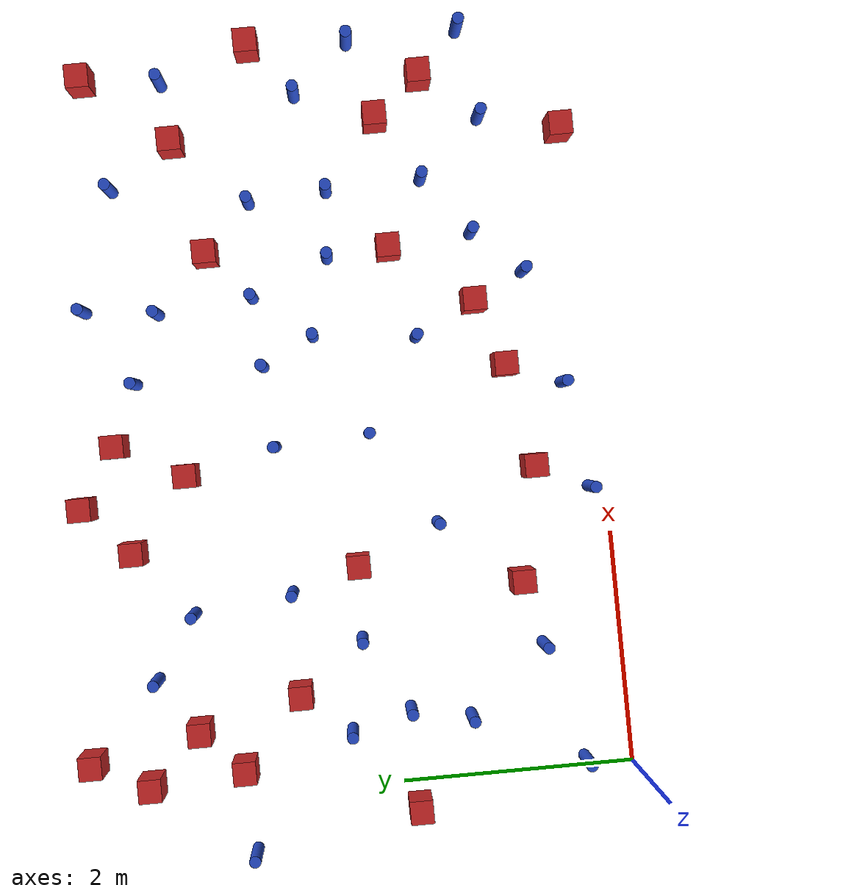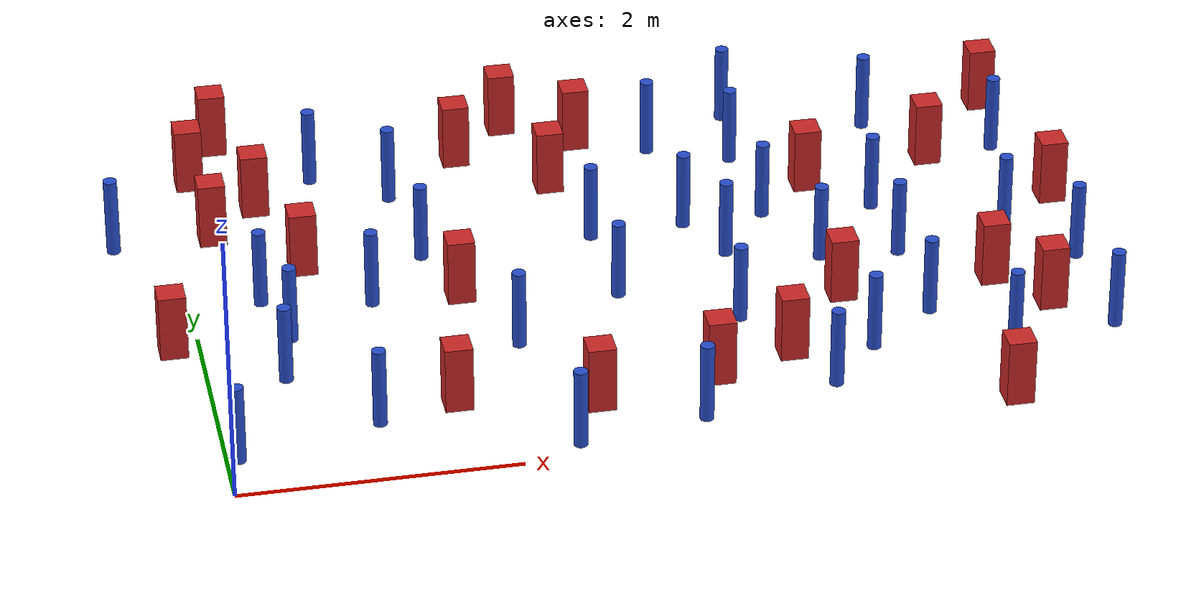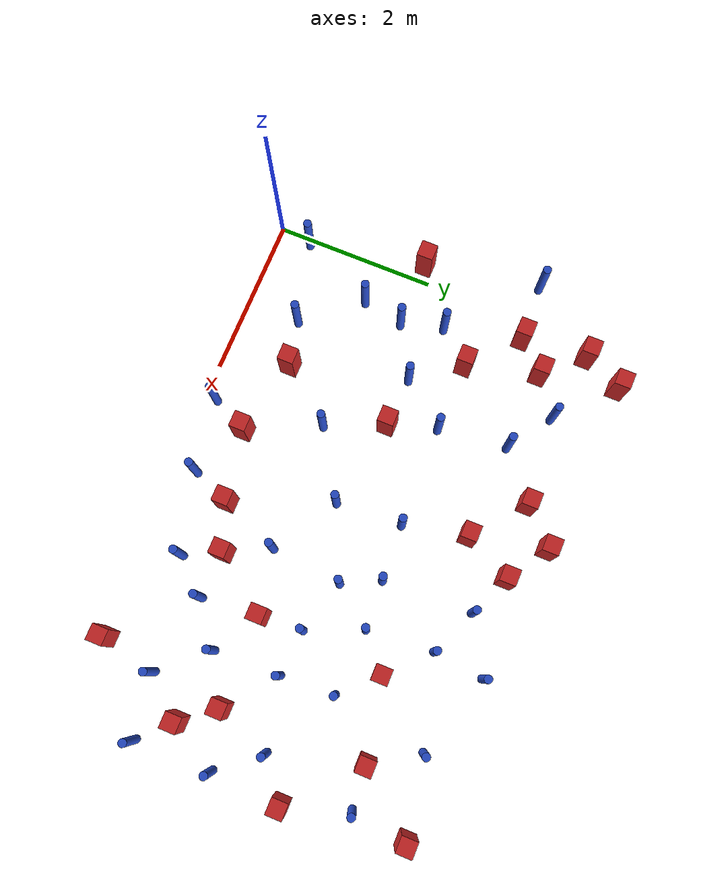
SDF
<sdf version="1.6">
 <model name="dense_87">
  <model name="pole_obstacle4">
   <static>true</static>
   <pose>4.31455545916 2.92079606758 -3.09024884793e-07 -7.19054271912e-07 -2.11315075144e-07 -1.93935509269e-07</pose>
   <link name="link">
    <pose>0 0 0.3 0 -0 0</pose>
    <inertial>
     <mass>1</mass>
     <inertia><ixx>0.145833</ixx><ixy>0</ixy><ixz>0</ixz><iyy>0.145833</iyy><iyz>0</iyz><izz>0.125</izz></inertia>
    </inertial>
    <collision name="collision">
     <geometry><cylinder><radius>0.05</radius><length>.6</length></cylinder></geometry>
    </collision>
    <visual name="visual">
     <geometry><cylinder><radius>0.05</radius><length>.6</length></cylinder></geometry>
     <material>
      <script><name>Gazebo/Blue</name><uri>file://media/materials/scripts/gazebo.material</uri></script>
     </material>
    </visual>
   </link>
  </model>
  <model name="pole_obstacle25">
   <static>true</static>
   <pose>1.74162384043 2.80790043297 -3.09024884793e-07 -7.19054271912e-07 -2.11315075132e-07 -1.93935509263e-07</pose>
   <link name="link">
    <pose>0 0 0.3 0 -0 0</pose>
    <inertial>
     <mass>1</mass>
     <inertia><ixx>0.145833</ixx><ixy>0</ixy><ixz>0</ixz><iyy>0.145833</iyy><iyz>0</iyz><izz>0.125</izz></inertia>
    </inertial>
    <collision name="collision">
     <geometry><cylinder><radius>0.05</radius><length>.6</length></cylinder></geometry>
    </collision>
    <visual name="visual">
     <geometry><cylinder><radius>0.05</radius><length>.6</length></cylinder></geometry>
     <material>
      <script><name>Gazebo/Blue</name><uri>file://media/materials/scripts/gazebo.material</uri></script>
     </material>
    </visual>
   </link>
  </model>
  <model name="pole_obstacle26">
   <static>true</static>
   <pose>1.09740934956 4.03963269576 -3.09024884793e-07 -7.19054271912e-07 -2.11315075135e-07 -1.93935509266e-07</pose>
   <link name="link">
    <pose>0 0 0.3 0 -0 0</pose>
    <inertial>
     <mass>1</mass>
     <inertia><ixx>0.145833</ixx><ixy>0</ixy><ixz>0</ixz><iyy>0.145833</iyy><iyz>0</iyz><izz>0.125</izz></inertia>
    </inertial>
    <collision name="collision">
     <geometry><cylinder><radius>0.05</radius><length>.6</length></cylinder></geometry>
    </collision>
    <visual name="visual">
     <geometry><cylinder><radius>0.05</radius><length>.6</length></cylinder></geometry>
     <material>
      <script><name>Gazebo/Blue</name><uri>file://media/materials/scripts/gazebo.material</uri></script>
     </material>
    </visual>
   </link>
  </model>
  <model name="pole_obstacle30">
   <static>true</static>
   <pose>5.6883734947 0.833998870082 -3.09024884793e-07 -7.19054271912e-07 -2.11315075134e-07 -1.93935509265e-07</pose>
   <link name="link">
    <pose>0 0 0.3 0 -0 0</pose>
    <inertial>
     <mass>1</mass>
     <inertia><ixx>0.145833</ixx><ixy>0</ixy><ixz>0</ixz><iyy>0.145833</iyy><iyz>0</iyz><izz>0.125</izz></inertia>
    </inertial>
    <collision name="collision">
     <geometry><cylinder><radius>0.05</radius><length>.6</length></cylinder></geometry>
    </collision>
    <visual name="visual">
     <geometry><cylinder><radius>0.05</radius><length>.6</length></cylinder></geometry>
     <material>
      <script><name>Gazebo/Blue</name><uri>file://media/materials/scripts/gazebo.material</uri></script>
     </material>
    </visual>
   </link>
  </model>
  <model name="pole_obstacle31">
   <static>true</static>
   <pose>6.4628553626 0.952704947957 -3.09024884793e-07 -7.19054271912e-07 -2.11315075121e-07 -1.93935509258e-07</pose>
   <link name="link">
    <pose>0 0 0.3 0 -0 0</pose>
    <inertial>
     <mass>1</mass>
     <inertia><ixx>0.145833</ixx><ixy>0</ixy><ixz>0</ixz><iyy>0.145833</iyy><iyz>0</iyz><izz>0.125</izz></inertia>
    </inertial>
    <collision name="collision">
     <geometry><cylinder><radius>0.05</radius><length>.6</length></cylinder></geometry>
    </collision>
    <visual name="visual">
     <geometry><cylinder><radius>0.05</radius><length>.6</length></cylinder></geometry>
     <material>
      <script><name>Gazebo/Blue</name><uri>file://media/materials/scripts/gazebo.material</uri></script>
     </material>
    </visual>
   </link>
  </model>
  <model name="square_post_obstacle24">
   <static>true</static>
   <pose>5.75669852665 1.72912787359 -4.36207812815e-07 3.75137919937e-06 9.77721102514e-07 2.47381364184e-05</pose>
   <link name="link">
    <pose>0 0 0.25 0 -0 0</pose>
    <inertial>
     <mass>100</mass>
     <inertia>
      <ixx>0.166667</ixx>
      <ixy>0</ixy>
      <ixz>0</ixz>
      <iyy>0.166667</iyy>
      <iyz>0</iyz>
      <izz>0.166667</izz>
     </inertia>
    </inertial>
    <collision name="collision"><geometry><box><size>.2 .2 .5</size></box></geometry></collision>
    <visual name="visual">
     <geometry><box><size>.2 .2 .5</size></box></geometry>
     <material>
      <script><name>Gazebo/Red</name><uri>file://media/materials/scripts/gazebo.material</uri></script>
     </material>
    </visual>
   </link>
  </model>
  <model name="pole_obstacle38">
   <static>true</static>
   <pose>3.3402823136 0.316482043341 -3.09024884793e-07 -7.19054271912e-07 -2.1131507512e-07 -1.93935509259e-07</pose>
   <link name="link">
    <pose>0 0 0.3 0 -0 0</pose>
    <inertial>
     <mass>1</mass>
     <inertia><ixx>0.145833</ixx><ixy>0</ixy><ixz>0</ixz><iyy>0.145833</iyy><iyz>0</iyz><izz>0.125</izz></inertia>
    </inertial>
    <collision name="collision">
     <geometry><cylinder><radius>0.05</radius><length>.6</length></cylinder></geometry>
    </collision>
    <visual name="visual">
     <geometry><cylinder><radius>0.05</radius><length>.6</length></cylinder></geometry>
     <material>
      <script><name>Gazebo/Blue</name><uri>file://media/materials/scripts/gazebo.material</uri></script>
     </material>
    </visual>
   </link>
  </model>
  <model name="pole_obstacle39">
   <static>true</static>
   <pose>4.69946434895 0.99012826212 -3.09024884793e-07 -7.19054271912e-07 -2.11315075121e-07 -1.93935509258e-07</pose>
   <link name="link">
    <pose>0 0 0.3 0 -0 0</pose>
    <inertial>
     <mass>1</mass>
     <inertia><ixx>0.145833</ixx><ixy>0</ixy><ixz>0</ixz><iyy>0.145833</iyy><iyz>0</iyz><izz>0.125</izz></inertia>
    </inertial>
    <collision name="collision">
     <geometry><cylinder><radius>0.05</radius><length>.6</length></cylinder></geometry>
    </collision>
    <visual name="visual">
     <geometry><cylinder><radius>0.05</radius><length>.6</length></cylinder></geometry>
     <material>
      <script><name>Gazebo/Blue</name><uri>file://media/materials/scripts/gazebo.material</uri></script>
     </material>
    </visual>
   </link>
  </model>
  <model name="square_post_obstacle31">
   <static>true</static>
   <pose>0.866396240107 2.81461666955 -4.36207812815e-07 3.75137919937e-06 9.77721102514e-07 2.47381364184e-05</pose>
   <link name="link">
    <pose>0 0 0.25 0 -0 0</pose>
    <inertial>
     <mass>100</mass>
     <inertia>
      <ixx>0.166667</ixx>
      <ixy>0</ixy>
      <ixz>0</ixz>
      <iyy>0.166667</iyy>
      <iyz>0</iyz>
      <izz>0.166667</izz>
     </inertia>
    </inertial>
    <collision name="collision"><geometry><box><size>.2 .2 .5</size></box></geometry></collision>
    <visual name="visual">
     <geometry><box><size>.2 .2 .5</size></box></geometry>
     <material>
      <script><name>Gazebo/Red</name><uri>file://media/materials/scripts/gazebo.material</uri></script>
     </material>
    </visual>
   </link>
  </model>
  <model name="square_post_obstacle34">
   <static>true</static>
   <pose>3.13941664115 4.21430315404 -4.36207812815e-07 3.75137919937e-06 9.77721102514e-07 2.47381364184e-05</pose>
   <link name="link">
    <pose>0 0 0.25 0 -0 0</pose>
    <inertial>
     <mass>100</mass>
     <inertia>
      <ixx>0.166667</ixx>
      <ixy>0</ixy>
      <ixz>0</ixz>
      <iyy>0.166667</iyy>
      <iyz>0</iyz>
      <izz>0.166667</izz>
     </inertia>
    </inertial>
    <collision name="collision"><geometry><box><size>.2 .2 .5</size></box></geometry></collision>
    <visual name="visual">
     <geometry><box><size>.2 .2 .5</size></box></geometry>
     <material>
      <script><name>Gazebo/Red</name><uri>file://media/materials/scripts/gazebo.material</uri></script>
     </material>
    </visual>
   </link>
  </model>
  <model name="pole_obstacle46">
   <static>true</static>
   <pose>2.23304178201 1.50109195398 -3.09024884793e-07 -7.19054271912e-07 -2.11315075122e-07 -1.93935509259e-07</pose>
   <link name="link">
    <pose>0 0 0.3 0 -0 0</pose>
    <inertial>
     <mass>1</mass>
     <inertia><ixx>0.145833</ixx><ixy>0</ixy><ixz>0</ixz><iyy>0.145833</iyy><iyz>0</iyz><izz>0.125</izz></inertia>
    </inertial>
    <collision name="collision">
     <geometry><cylinder><radius>0.05</radius><length>.6</length></cylinder></geometry>
    </collision>
    <visual name="visual">
     <geometry><cylinder><radius>0.05</radius><length>.6</length></cylinder></geometry>
     <material>
      <script><name>Gazebo/Blue</name><uri>file://media/materials/scripts/gazebo.material</uri></script>
     </material>
    </visual>
   </link>
  </model>
  <model name="pole_obstacle48">
   <static>true</static>
   <pose>4.32806337356 0.573420995363 -3.09024884793e-07 -7.19054271912e-07 -2.11315075134e-07 -1.93935509265e-07</pose>
   <link name="link">
    <pose>0 0 0.3 0 -0 0</pose>
    <inertial>
     <mass>1</mass>
     <inertia><ixx>0.145833</ixx><ixy>0</ixy><ixz>0</ixz><iyy>0.145833</iyy><iyz>0</iyz><izz>0.125</izz></inertia>
    </inertial>
    <collision name="collision">
     <geometry><cylinder><radius>0.05</radius><length>.6</length></cylinder></geometry>
    </collision>
    <visual name="visual">
     <geometry><cylinder><radius>0.05</radius><length>.6</length></cylinder></geometry>
     <material>
      <script><name>Gazebo/Blue</name><uri>file://media/materials/scripts/gazebo.material</uri></script>
     </material>
    </visual>
   </link>
  </model>
  <model name="pole_obstacle49">
   <static>true</static>
   <pose>0.543889795079 1.36433633656 -3.09024884793e-07 -7.19054271912e-07 -2.11315075142e-07 -1.93935509268e-07</pose>
   <link name="link">
    <pose>0 0 0.3 0 -0 0</pose>
    <inertial>
     <mass>1</mass>
     <inertia><ixx>0.145833</ixx><ixy>0</ixy><ixz>0</ixz><iyy>0.145833</iyy><iyz>0</iyz><izz>0.125</izz></inertia>
    </inertial>
    <collision name="collision">
     <geometry><cylinder><radius>0.05</radius><length>.6</length></cylinder></geometry>
    </collision>
    <visual name="visual">
     <geometry><cylinder><radius>0.05</radius><length>.6</length></cylinder></geometry>
     <material>
      <script><name>Gazebo/Blue</name><uri>file://media/materials/scripts/gazebo.material</uri></script>
     </material>
    </visual>
   </link>
  </model>
  <model name="square_post_obstacle43">
   <static>true</static>
   <pose>4.10786800772 1.02498283134 -4.36207812815e-07 3.75137919937e-06 9.77721102514e-07 2.47381364184e-05</pose>
   <link name="link">
    <pose>0 0 0.25 0 -0 0</pose>
    <inertial>
     <mass>100</mass>
     <inertia>
      <ixx>0.166667</ixx>
      <ixy>0</ixy>
      <ixz>0</ixz>
      <iyy>0.166667</iyy>
      <iyz>0</iyz>
      <izz>0.166667</izz>
     </inertia>
    </inertial>
    <collision name="collision"><geometry><box><size>.2 .2 .5</size></box></geometry></collision>
    <visual name="visual">
     <geometry><box><size>.2 .2 .5</size></box></geometry>
     <material>
      <script><name>Gazebo/Red</name><uri>file://media/materials/scripts/gazebo.material</uri></script>
     </material>
    </visual>
   </link>
  </model>
  <model name="pole_obstacle58">
   <static>true</static>
   <pose>0.651572628444 1.88113715899 -3.09024884793e-07 -7.19054271912e-07 -2.11315075135e-07 -1.93935509266e-07</pose>
   <link name="link">
    <pose>0 0 0.3 0 -0 0</pose>
    <inertial>
     <mass>1</mass>
     <inertia><ixx>0.145833</ixx><ixy>0</ixy><ixz>0</ixz><iyy>0.145833</iyy><iyz>0</iyz><izz>0.125</izz></inertia>
    </inertial>
    <collision name="collision">
     <geometry><cylinder><radius>0.05</radius><length>.6</length></cylinder></geometry>
    </collision>
    <visual name="visual">
     <geometry><cylinder><radius>0.05</radius><length>.6</length></cylinder></geometry>
     <material>
      <script><name>Gazebo/Blue</name><uri>file://media/materials/scripts/gazebo.material</uri></script>
     </material>
    </visual>
   </link>
  </model>
  <model name="pole_obstacle67">
   <static>true</static>
   <pose>0.0842549476155 0.416633764577 -3.09024884793e-07 -7.19054271912e-07 -2.11315075134e-07 -1.93935509264e-07</pose>
   <link name="link">
    <pose>0 0 0.3 0 -0 0</pose>
    <inertial>
     <mass>1</mass>
     <inertia><ixx>0.145833</ixx><ixy>0</ixy><ixz>0</ixz><iyy>0.145833</iyy><iyz>0</iyz><izz>0.125</izz></inertia>
    </inertial>
    <collision name="collision">
     <geometry><cylinder><radius>0.05</radius><length>.6</length></cylinder></geometry>
    </collision>
    <visual name="visual">
     <geometry><cylinder><radius>0.05</radius><length>.6</length></cylinder></geometry>
     <material>
      <script><name>Gazebo/Blue</name><uri>file://media/materials/scripts/gazebo.material</uri></script>
     </material>
    </visual>
   </link>
  </model>
  <model name="pole_obstacle68">
   <static>true</static>
   <pose>1.29208701074 2.24475795163 -3.09024884793e-07 -7.19054271912e-07 -2.11315075132e-07 -1.93935509263e-07</pose>
   <link name="link">
    <pose>0 0 0.3 0 -0 0</pose>
    <inertial>
     <mass>1</mass>
     <inertia><ixx>0.145833</ixx><ixy>0</ixy><ixz>0</ixz><iyy>0.145833</iyy><iyz>0</iyz><izz>0.125</izz></inertia>
    </inertial>
    <collision name="collision">
     <geometry><cylinder><radius>0.05</radius><length>.6</length></cylinder></geometry>
    </collision>
    <visual name="visual">
     <geometry><cylinder><radius>0.05</radius><length>.6</length></cylinder></geometry>
     <material>
      <script><name>Gazebo/Blue</name><uri>file://media/materials/scripts/gazebo.material</uri></script>
     </material>
    </visual>
   </link>
  </model>
  <model name="pole_obstacle73">
   <static>true</static>
   <pose>4.32288337281 4.38044148047 -3.09024884793e-07 -7.19054271911e-07 -2.1131507516e-07 -1.93935509277e-07</pose>
   <link name="link">
    <pose>0 0 0.3 0 -0 0</pose>
    <inertial>
     <mass>1</mass>
     <inertia><ixx>0.145833</ixx><ixy>0</ixy><ixz>0</ixz><iyy>0.145833</iyy><iyz>0</iyz><izz>0.125</izz></inertia>
    </inertial>
    <collision name="collision">
     <geometry><cylinder><radius>0.05</radius><length>.6</length></cylinder></geometry>
    </collision>
    <visual name="visual">
     <geometry><cylinder><radius>0.05</radius><length>.6</length></cylinder></geometry>
     <material>
      <script><name>Gazebo/Blue</name><uri>file://media/materials/scripts/gazebo.material</uri></script>
     </material>
    </visual>
   </link>
  </model>
  <model name="pole_obstacle83">
   <static>true</static>
   <pose>1.10468324843 0.68616891235 -3.09024884793e-07 -7.19054271912e-07 -2.1131507513e-07 -1.93935509263e-07</pose>
   <link name="link">
    <pose>0 0 0.3 0 -0 0</pose>
    <inertial>
     <mass>1</mass>
     <inertia><ixx>0.145833</ixx><ixy>0</ixy><ixz>0</ixz><iyy>0.145833</iyy><iyz>0</iyz><izz>0.125</izz></inertia>
    </inertial>
    <collision name="collision">
     <geometry><cylinder><radius>0.05</radius><length>.6</length></cylinder></geometry>
    </collision>
    <visual name="visual">
     <geometry><cylinder><radius>0.05</radius><length>.6</length></cylinder></geometry>
     <material>
      <script><name>Gazebo/Blue</name><uri>file://media/materials/scripts/gazebo.material</uri></script>
     </material>
    </visual>
   </link>
  </model>
  <model name="square_post_obstacle73">
   <static>true</static>
   <pose>3.53665921316 0.809654271175 -4.36207812815e-07 3.75137919937e-06 9.77721102514e-07 2.47381364184e-05</pose>
   <link name="link">
    <pose>0 0 0.25 0 -0 0</pose>
    <inertial>
     <mass>100</mass>
     <inertia>
      <ixx>0.166667</ixx>
      <ixy>0</ixy>
      <ixz>0</ixz>
      <iyy>0.166667</iyy>
      <iyz>0</iyz>
      <izz>0.166667</izz>
     </inertia>
    </inertial>
    <collision name="collision"><geometry><box><size>.2 .2 .5</size></box></geometry></collision>
    <visual name="visual">
     <geometry><box><size>.2 .2 .5</size></box></geometry>
     <material>
      <script><name>Gazebo/Red</name><uri>file://media/materials/scripts/gazebo.material</uri></script>
     </material>
    </visual>
   </link>
  </model>
  <model name="square_post_obstacle74">
   <static>true</static>
   <pose>6.08530940527 1.32384995775 -4.36207812815e-07 3.75137919937e-06 9.77721102514e-07 2.47381364184e-05</pose>
   <link name="link">
    <pose>0 0 0.25 0 -0 0</pose>
    <inertial>
     <mass>100</mass>
     <inertia>
      <ixx>0.166667</ixx>
      <ixy>0</ixy>
      <ixz>0</ixz>
      <iyy>0.166667</iyy>
      <iyz>0</iyz>
      <izz>0.166667</izz>
     </inertia>
    </inertial>
    <collision name="collision"><geometry><box><size>.2 .2 .5</size></box></geometry></collision>
    <visual name="visual">
     <geometry><box><size>.2 .2 .5</size></box></geometry>
     <material>
      <script><name>Gazebo/Red</name><uri>file://media/materials/scripts/gazebo.material</uri></script>
     </material>
    </visual>
   </link>
  </model>
  <model name="pole_obstacle88">
   <static>true</static>
   <pose>-0.455179903038 3.32063741083 -3.09024884793e-07 -7.19054271912e-07 -2.11315075121e-07 -1.93935509258e-07</pose>
   <link name="link">
    <pose>0 0 0.3 0 -0 0</pose>
    <inertial>
     <mass>1</mass>
     <inertia><ixx>0.145833</ixx><ixy>0</ixy><ixz>0</ixz><iyy>0.145833</iyy><iyz>0</iyz><izz>0.125</izz></inertia>
    </inertial>
    <collision name="collision">
     <geometry><cylinder><radius>0.05</radius><length>.6</length></cylinder></geometry>
    </collision>
    <visual name="visual">
     <geometry><cylinder><radius>0.05</radius><length>.6</length></cylinder></geometry>
     <material>
      <script><name>Gazebo/Blue</name><uri>file://media/materials/scripts/gazebo.material</uri></script>
     </material>
    </visual>
   </link>
  </model>
  <model name="pole_obstacle89">
   <static>true</static>
   <pose>5.17434374706 2.20109666502 -3.09024884793e-07 -7.19054271912e-07 -2.11315075144e-07 -1.93935509269e-07</pose>
   <link name="link">
    <pose>0 0 0.3 0 -0 0</pose>
    <inertial>
     <mass>1</mass>
     <inertia><ixx>0.145833</ixx><ixy>0</ixy><ixz>0</ixz><iyy>0.145833</iyy><iyz>0</iyz><izz>0.125</izz></inertia>
    </inertial>
    <collision name="collision">
     <geometry><cylinder><radius>0.05</radius><length>.6</length></cylinder></geometry>
    </collision>
    <visual name="visual">
     <geometry><cylinder><radius>0.05</radius><length>.6</length></cylinder></geometry>
     <material>
      <script><name>Gazebo/Blue</name><uri>file://media/materials/scripts/gazebo.material</uri></script>
     </material>
    </visual>
   </link>
  </model>
  <model name="square_post_obstacle82">
   <static>true</static>
   <pose>2.64726107092 0.635739808452 -4.36207812815e-07 3.75137919937e-06 9.77721102514e-07 2.47381364184e-05</pose>
   <link name="link">
    <pose>0 0 0.25 0 -0 0</pose>
    <inertial>
     <mass>100</mass>
     <inertia>
      <ixx>0.166667</ixx>
      <ixy>0</ixy>
      <ixz>0</ixz>
      <iyy>0.166667</iyy>
      <iyz>0</iyz>
      <izz>0.166667</izz>
     </inertia>
    </inertial>
    <collision name="collision"><geometry><box><size>.2 .2 .5</size></box></geometry></collision>
    <visual name="visual">
     <geometry><box><size>.2 .2 .5</size></box></geometry>
     <material>
      <script><name>Gazebo/Red</name><uri>file://media/materials/scripts/gazebo.material</uri></script>
     </material>
    </visual>
   </link>
  </model>
  <model name="pole_obstacle93">
   <static>true</static>
   <pose>4.60090280616 2.24381102893 -3.09024884793e-07 -7.19054271912e-07 -2.11315075144e-07 -1.93935509269e-07</pose>
   <link name="link">
    <pose>0 0 0.3 0 -0 0</pose>
    <inertial>
     <mass>1</mass>
     <inertia><ixx>0.145833</ixx><ixy>0</ixy><ixz>0</ixz><iyy>0.145833</iyy><iyz>0</iyz><izz>0.125</izz></inertia>
    </inertial>
    <collision name="collision">
     <geometry><cylinder><radius>0.05</radius><length>.6</length></cylinder></geometry>
    </collision>
    <visual name="visual">
     <geometry><cylinder><radius>0.05</radius><length>.6</length></cylinder></geometry>
     <material>
      <script><name>Gazebo/Blue</name><uri>file://media/materials/scripts/gazebo.material</uri></script>
     </material>
    </visual>
   </link>
  </model>
  <model name="square_post_obstacle86">
   <static>true</static>
   <pose>1.92738016484 2.22029041243 -4.36207812815e-07 3.75137919937e-06 9.77721102514e-07 2.47381364184e-05</pose>
   <link name="link">
    <pose>0 0 0.25 0 -0 0</pose>
    <inertial>
     <mass>100</mass>
     <inertia>
      <ixx>0.166667</ixx>
      <ixy>0</ixy>
      <ixz>0</ixz>
      <iyy>0.166667</iyy>
      <iyz>0</iyz>
      <izz>0.166667</izz>
     </inertia>
    </inertial>
    <collision name="collision"><geometry><box><size>.2 .2 .5</size></box></geometry></collision>
    <visual name="visual">
     <geometry><box><size>.2 .2 .5</size></box></geometry>
     <material>
      <script><name>Gazebo/Red</name><uri>file://media/materials/scripts/gazebo.material</uri></script>
     </material>
    </visual>
   </link>
  </model>
  <model name="pole_obstacle106">
   <static>true</static>
   <pose>5.13529515188 2.87699589242 -3.09024884793e-07 -7.19054271912e-07 -2.11315075144e-07 -1.93935509269e-07</pose>
   <link name="link">
    <pose>0 0 0.3 0 -0 0</pose>
    <inertial>
     <mass>1</mass>
     <inertia><ixx>0.145833</ixx><ixy>0</ixy><ixz>0</ixz><iyy>0.145833</iyy><iyz>0</iyz><izz>0.125</izz></inertia>
    </inertial>
    <collision name="collision">
     <geometry><cylinder><radius>0.05</radius><length>.6</length></cylinder></geometry>
    </collision>
    <visual name="visual">
     <geometry><cylinder><radius>0.05</radius><length>.6</length></cylinder></geometry>
     <material>
      <script><name>Gazebo/Blue</name><uri>file://media/materials/scripts/gazebo.material</uri></script>
     </material>
    </visual>
   </link>
  </model>
  <model name="pole_obstacle109">
   <static>true</static>
   <pose>3.05372442715 2.0213238326 -3.09024884793e-07 -7.19054271912e-07 -2.11315075129e-07 -1.93935509262e-07</pose>
   <link name="link">
    <pose>0 0 0.3 0 -0 0</pose>
    <inertial>
     <mass>1</mass>
     <inertia><ixx>0.145833</ixx><ixy>0</ixy><ixz>0</ixz><iyy>0.145833</iyy><iyz>0</iyz><izz>0.125</izz></inertia>
    </inertial>
    <collision name="collision">
     <geometry><cylinder><radius>0.05</radius><length>.6</length></cylinder></geometry>
    </collision>
    <visual name="visual">
     <geometry><cylinder><radius>0.05</radius><length>.6</length></cylinder></geometry>
     <material>
      <script><name>Gazebo/Blue</name><uri>file://media/materials/scripts/gazebo.material</uri></script>
     </material>
    </visual>
   </link>
  </model>
  <model name="square_post_obstacle105">
   <static>true</static>
   <pose>2.62913756377 4.54352953189 -4.36207812815e-07 3.75137919937e-06 9.77721102514e-07 2.47381364184e-05</pose>
   <link name="link">
    <pose>0 0 0.25 0 -0 0</pose>
    <inertial>
     <mass>100</mass>
     <inertia>
      <ixx>0.166667</ixx>
      <ixy>0</ixy>
      <ixz>0</ixz>
      <iyy>0.166667</iyy>
      <iyz>0</iyz>
      <izz>0.166667</izz>
     </inertia>
    </inertial>
    <collision name="collision"><geometry><box><size>.2 .2 .5</size></box></geometry></collision>
    <visual name="visual">
     <geometry><box><size>.2 .2 .5</size></box></geometry>
     <material>
      <script><name>Gazebo/Red</name><uri>file://media/materials/scripts/gazebo.material</uri></script>
     </material>
    </visual>
   </link>
  </model>
  <model name="square_post_obstacle106">
   <static>true</static>
   <pose>1.67220113616 0.829683560557 -4.36207812815e-07 3.75137919937e-06 9.77721102514e-07 2.47381364184e-05</pose>
   <link name="link">
    <pose>0 0 0.25 0 -0 0</pose>
    <inertial>
     <mass>100</mass>
     <inertia>
      <ixx>0.166667</ixx>
      <ixy>0</ixy>
      <ixz>0</ixz>
      <iyy>0.166667</iyy>
      <iyz>0</iyz>
      <izz>0.166667</izz>
     </inertia>
    </inertial>
    <collision name="collision"><geometry><box><size>.2 .2 .5</size></box></geometry></collision>
    <visual name="visual">
     <geometry><box><size>.2 .2 .5</size></box></geometry>
     <material>
      <script><name>Gazebo/Red</name><uri>file://media/materials/scripts/gazebo.material</uri></script>
     </material>
    </visual>
   </link>
  </model>
  <model name="pole_obstacle113">
   <static>true</static>
   <pose>6.23177568906 3.54276909589 -3.09024884793e-07 -7.19054271912e-07 -2.11315075144e-07 -1.93935509269e-07</pose>
   <link name="link">
    <pose>0 0 0.3 0 -0 0</pose>
    <inertial>
     <mass>1</mass>
     <inertia><ixx>0.145833</ixx><ixy>0</ixy><ixz>0</ixz><iyy>0.145833</iyy><iyz>0</iyz><izz>0.125</izz></inertia>
    </inertial>
    <collision name="collision">
     <geometry><cylinder><radius>0.05</radius><length>.6</length></cylinder></geometry>
    </collision>
    <visual name="visual">
     <geometry><cylinder><radius>0.05</radius><length>.6</length></cylinder></geometry>
     <material>
      <script><name>Gazebo/Blue</name><uri>file://media/materials/scripts/gazebo.material</uri></script>
     </material>
    </visual>
   </link>
  </model>
  <model name="pole_obstacle114">
   <static>true</static>
   <pose>5.35019446583 4.05414884857 -3.09024884793e-07 -7.19054271911e-07 -2.1131507516e-07 -1.93935509277e-07</pose>
   <link name="link">
    <pose>0 0 0.3 0 -0 0</pose>
    <inertial>
     <mass>1</mass>
     <inertia><ixx>0.145833</ixx><ixy>0</ixy><ixz>0</ixz><iyy>0.145833</iyy><iyz>0</iyz><izz>0.125</izz></inertia>
    </inertial>
    <collision name="collision">
     <geometry><cylinder><radius>0.05</radius><length>.6</length></cylinder></geometry>
    </collision>
    <visual name="visual">
     <geometry><cylinder><radius>0.05</radius><length>.6</length></cylinder></geometry>
     <material>
      <script><name>Gazebo/Blue</name><uri>file://media/materials/scripts/gazebo.material</uri></script>
     </material>
    </visual>
   </link>
  </model>
  <model name="square_post_obstacle112">
   <static>true</static>
   <pose>0.200137669251 4.16412406503 -4.36207812815e-07 3.75137919937e-06 9.77721102514e-07 2.47381364184e-05</pose>
   <link name="link">
    <pose>0 0 0.25 0 -0 0</pose>
    <inertial>
     <mass>100</mass>
     <inertia>
      <ixx>0.166667</ixx>
      <ixy>0</ixy>
      <ixz>0</ixz>
      <iyy>0.166667</iyy>
      <iyz>0</iyz>
      <izz>0.166667</izz>
     </inertia>
    </inertial>
    <collision name="collision"><geometry><box><size>.2 .2 .5</size></box></geometry></collision>
    <visual name="visual">
     <geometry><box><size>.2 .2 .5</size></box></geometry>
     <material>
      <script><name>Gazebo/Red</name><uri>file://media/materials/scripts/gazebo.material</uri></script>
     </material>
    </visual>
   </link>
  </model>
  <model name="square_post_obstacle114">
   <static>true</static>
   <pose>5.70150895306 3.49062618616 -4.36207812815e-07 3.75137919937e-06 9.77721102514e-07 2.47381364184e-05</pose>
   <link name="link">
    <pose>0 0 0.25 0 -0 0</pose>
    <inertial>
     <mass>100</mass>
     <inertia>
      <ixx>0.166667</ixx>
      <ixy>0</ixy>
      <ixz>0</ixz>
      <iyy>0.166667</iyy>
      <iyz>0</iyz>
      <izz>0.166667</izz>
     </inertia>
    </inertial>
    <collision name="collision"><geometry><box><size>.2 .2 .5</size></box></geometry></collision>
    <visual name="visual">
     <geometry><box><size>.2 .2 .5</size></box></geometry>
     <material>
      <script><name>Gazebo/Red</name><uri>file://media/materials/scripts/gazebo.material</uri></script>
     </material>
    </visual>
   </link>
  </model>
  <model name="pole_obstacle128">
   <static>true</static>
   <pose>5.20387048082 1.37830320396 -3.09024884793e-07 -7.19054271912e-07 -2.11315075124e-07 -1.93935509261e-07</pose>
   <link name="link">
    <pose>0 0 0.3 0 -0 0</pose>
    <inertial>
     <mass>1</mass>
     <inertia><ixx>0.145833</ixx><ixy>0</ixy><ixz>0</ixz><iyy>0.145833</iyy><iyz>0</iyz><izz>0.125</izz></inertia>
    </inertial>
    <collision name="collision">
     <geometry><cylinder><radius>0.05</radius><length>.6</length></cylinder></geometry>
    </collision>
    <visual name="visual">
     <geometry><cylinder><radius>0.05</radius><length>.6</length></cylinder></geometry>
     <material>
      <script><name>Gazebo/Blue</name><uri>file://media/materials/scripts/gazebo.material</uri></script>
     </material>
    </visual>
   </link>
  </model>
  <model name="pole_obstacle131">
   <static>true</static>
   <pose>3.01049475938 2.84337319833 -3.09024884793e-07 -7.19054271912e-07 -2.11315075144e-07 -1.93935509271e-07</pose>
   <link name="link">
    <pose>0 0 0.3 0 -0 0</pose>
    <inertial>
     <mass>1</mass>
     <inertia><ixx>0.145833</ixx><ixy>0</ixy><ixz>0</ixz><iyy>0.145833</iyy><iyz>0</iyz><izz>0.125</izz></inertia>
    </inertial>
    <collision name="collision">
     <geometry><cylinder><radius>0.05</radius><length>.6</length></cylinder></geometry>
    </collision>
    <visual name="visual">
     <geometry><cylinder><radius>0.05</radius><length>.6</length></cylinder></geometry>
     <material>
      <script><name>Gazebo/Blue</name><uri>file://media/materials/scripts/gazebo.material</uri></script>
     </material>
    </visual>
   </link>
  </model>
  <model name="pole_obstacle135">
   <static>true</static>
   <pose>4.24840533065 3.75017123607 -3.09024884793e-07 -7.19054271912e-07 -2.11315075144e-07 -1.93935509269e-07</pose>
   <link name="link">
    <pose>0 0 0.3 0 -0 0</pose>
    <inertial>
     <mass>1</mass>
     <inertia><ixx>0.145833</ixx><ixy>0</ixy><ixz>0</ixz><iyy>0.145833</iyy><iyz>0</iyz><izz>0.125</izz></inertia>
    </inertial>
    <collision name="collision">
     <geometry><cylinder><radius>0.05</radius><length>.6</length></cylinder></geometry>
    </collision>
    <visual name="visual">
     <geometry><cylinder><radius>0.05</radius><length>.6</length></cylinder></geometry>
     <material>
      <script><name>Gazebo/Blue</name><uri>file://media/materials/scripts/gazebo.material</uri></script>
     </material>
    </visual>
   </link>
  </model>
  <model name="pole_obstacle138">
   <static>true</static>
   <pose>3.93393966848 2.43008920307 -3.09024884793e-07 -7.19054271912e-07 -2.11315075144e-07 -1.93935509271e-07</pose>
   <link name="link">
    <pose>0 0 0.3 0 -0 0</pose>
    <inertial>
     <mass>1</mass>
     <inertia><ixx>0.145833</ixx><ixy>0</ixy><ixz>0</ixz><iyy>0.145833</iyy><iyz>0</iyz><izz>0.125</izz></inertia>
    </inertial>
    <collision name="collision">
     <geometry><cylinder><radius>0.05</radius><length>.6</length></cylinder></geometry>
    </collision>
    <visual name="visual">
     <geometry><cylinder><radius>0.05</radius><length>.6</length></cylinder></geometry>
     <material>
      <script><name>Gazebo/Blue</name><uri>file://media/materials/scripts/gazebo.material</uri></script>
     </material>
    </visual>
   </link>
  </model>
  <model name="pole_obstacle139">
   <static>true</static>
   <pose>3.84753379405 1.54200146812 -3.09024884793e-07 -7.19054271912e-07 -2.11315075122e-07 -1.93935509259e-07</pose>
   <link name="link">
    <pose>0 0 0.3 0 -0 0</pose>
    <inertial>
     <mass>1</mass>
     <inertia><ixx>0.145833</ixx><ixy>0</ixy><ixz>0</ixz><iyy>0.145833</iyy><iyz>0</iyz><izz>0.125</izz></inertia>
    </inertial>
    <collision name="collision">
     <geometry><cylinder><radius>0.05</radius><length>.6</length></cylinder></geometry>
    </collision>
    <visual name="visual">
     <geometry><cylinder><radius>0.05</radius><length>.6</length></cylinder></geometry>
     <material>
      <script><name>Gazebo/Blue</name><uri>file://media/materials/scripts/gazebo.material</uri></script>
     </material>
    </visual>
   </link>
  </model>
  <model name="pole_obstacle141">
   <static>true</static>
   <pose>6.0278730968 2.40045363438 -3.09024884793e-07 -7.19054271912e-07 -2.11315075144e-07 -1.93935509269e-07</pose>
   <link name="link">
    <pose>0 0 0.3 0 -0 0</pose>
    <inertial>
     <mass>1</mass>
     <inertia><ixx>0.145833</ixx><ixy>0</ixy><ixz>0</ixz><iyy>0.145833</iyy><iyz>0</iyz><izz>0.125</izz></inertia>
    </inertial>
    <collision name="collision">
     <geometry><cylinder><radius>0.05</radius><length>.6</length></cylinder></geometry>
    </collision>
    <visual name="visual">
     <geometry><cylinder><radius>0.05</radius><length>.6</length></cylinder></geometry>
     <material>
      <script><name>Gazebo/Blue</name><uri>file://media/materials/scripts/gazebo.material</uri></script>
     </material>
    </visual>
   </link>
  </model>
  <model name="square_post_obstacle142">
   <static>true</static>
   <pose>4.63086352221 1.71574439289 -4.36207812815e-07 3.75137919937e-06 9.77721102514e-07 2.47381364184e-05</pose>
   <link name="link">
    <pose>0 0 0.25 0 -0 0</pose>
    <inertial>
     <mass>100</mass>
     <inertia>
      <ixx>0.166667</ixx>
      <ixy>0</ixy>
      <ixz>0</ixz>
      <iyy>0.166667</iyy>
      <iyz>0</iyz>
      <izz>0.166667</izz>
     </inertia>
    </inertial>
    <collision name="collision"><geometry><box><size>.2 .2 .5</size></box></geometry></collision>
    <visual name="visual">
     <geometry><box><size>.2 .2 .5</size></box></geometry>
     <material>
      <script><name>Gazebo/Red</name><uri>file://media/materials/scripts/gazebo.material</uri></script>
     </material>
    </visual>
   </link>
  </model>
  <model name="square_post_obstacle143">
   <static>true</static>
   <pose>0.27302591059 3.34873600931 -4.36207812815e-07 3.75137919937e-06 9.77721102514e-07 2.47381364184e-05</pose>
   <link name="link">
    <pose>0 0 0.25 0 -0 0</pose>
    <inertial>
     <mass>100</mass>
     <inertia>
      <ixx>0.166667</ixx>
      <ixy>0</ixy>
      <ixz>0</ixz>
      <iyy>0.166667</iyy>
      <iyz>0</iyz>
      <izz>0.166667</izz>
     </inertia>
    </inertial>
    <collision name="collision"><geometry><box><size>.2 .2 .5</size></box></geometry></collision>
    <visual name="visual">
     <geometry><box><size>.2 .2 .5</size></box></geometry>
     <material>
      <script><name>Gazebo/Red</name><uri>file://media/materials/scripts/gazebo.material</uri></script>
     </material>
    </visual>
   </link>
  </model>
  <model name="square_post_obstacle144">
   <static>true</static>
   <pose>6.30433250935 4.21684514954 -4.36207812815e-07 3.75137919937e-06 9.77721102514e-07 2.47381364184e-05</pose>
   <link name="link">
    <pose>0 0 0.25 0 -0 0</pose>
    <inertial>
     <mass>100</mass>
     <inertia>
      <ixx>0.166667</ixx>
      <ixy>0</ixy>
      <ixz>0</ixz>
      <iyy>0.166667</iyy>
      <iyz>0</iyz>
      <izz>0.166667</izz>
     </inertia>
    </inertial>
    <collision name="collision"><geometry><box><size>.2 .2 .5</size></box></geometry></collision>
    <visual name="visual">
     <geometry><box><size>.2 .2 .5</size></box></geometry>
     <material>
      <script><name>Gazebo/Red</name><uri>file://media/materials/scripts/gazebo.material</uri></script>
     </material>
    </visual>
   </link>
  </model>
  <model name="pole_obstacle154">
   <static>true</static>
   <pose>1.63765587391 3.66946644791 -3.09024884793e-07 -7.19054271912e-07 -2.11315075132e-07 -1.93935509263e-07</pose>
   <link name="link">
    <pose>0 0 0.3 0 -0 0</pose>
    <inertial>
     <mass>1</mass>
     <inertia><ixx>0.145833</ixx><ixy>0</ixy><ixz>0</ixz><iyy>0.145833</iyy><iyz>0</iyz><izz>0.125</izz></inertia>
    </inertial>
    <collision name="collision">
     <geometry><cylinder><radius>0.05</radius><length>.6</length></cylinder></geometry>
    </collision>
    <visual name="visual">
     <geometry><cylinder><radius>0.05</radius><length>.6</length></cylinder></geometry>
     <material>
      <script><name>Gazebo/Blue</name><uri>file://media/materials/scripts/gazebo.material</uri></script>
     </material>
    </visual>
   </link>
  </model>
  <model name="pole_obstacle155">
   <static>true</static>
   <pose>2.42044889918 0.164741486268 -3.09024884793e-07 -7.19054271912e-07 -2.1131507512e-07 -1.93935509258e-07</pose>
   <link name="link">
    <pose>0 0 0.3 0 -0 0</pose>
    <inertial>
     <mass>1</mass>
     <inertia><ixx>0.145833</ixx><ixy>0</ixy><ixz>0</ixz><iyy>0.145833</iyy><iyz>0</iyz><izz>0.125</izz></inertia>
    </inertial>
    <collision name="collision">
     <geometry><cylinder><radius>0.05</radius><length>.6</length></cylinder></geometry>
    </collision>
    <visual name="visual">
     <geometry><cylinder><radius>0.05</radius><length>.6</length></cylinder></geometry>
     <material>
      <script><name>Gazebo/Blue</name><uri>file://media/materials/scripts/gazebo.material</uri></script>
     </material>
    </visual>
   </link>
  </model>
  <model name="pole_obstacle160">
   <static>true</static>
   <pose>0.505816260326 2.40201638126 -3.09024884793e-07 -7.19054271912e-07 -2.11315075126e-07 -1.93935509261e-07</pose>
   <link name="link">
    <pose>0 0 0.3 0 -0 0</pose>
    <inertial>
     <mass>1</mass>
     <inertia><ixx>0.145833</ixx><ixy>0</ixy><ixz>0</ixz><iyy>0.145833</iyy><iyz>0</iyz><izz>0.125</izz></inertia>
    </inertial>
    <collision name="collision">
     <geometry><cylinder><radius>0.05</radius><length>.6</length></cylinder></geometry>
    </collision>
    <visual name="visual">
     <geometry><cylinder><radius>0.05</radius><length>.6</length></cylinder></geometry>
     <material>
      <script><name>Gazebo/Blue</name><uri>file://media/materials/scripts/gazebo.material</uri></script>
     </material>
    </visual>
   </link>
  </model>
  <model name="square_post_obstacle159">
   <static>true</static>
   <pose>5.52398424157 0.16212846173 -4.36207812815e-07 3.75137919937e-06 9.77721102514e-07 2.47381364184e-05</pose>
   <link name="link">
    <pose>0 0 0.25 0 -0 0</pose>
    <inertial>
     <mass>100</mass>
     <inertia>
      <ixx>0.166667</ixx>
      <ixy>0</ixy>
      <ixz>0</ixz>
      <iyy>0.166667</iyy>
      <iyz>0</iyz>
      <izz>0.166667</izz>
     </inertia>
    </inertial>
    <collision name="collision"><geometry><box><size>.2 .2 .5</size></box></geometry></collision>
    <visual name="visual">
     <geometry><box><size>.2 .2 .5</size></box></geometry>
     <material>
      <script><name>Gazebo/Red</name><uri>file://media/materials/scripts/gazebo.material</uri></script>
     </material>
    </visual>
   </link>
  </model>
  <model name="square_post_obstacle169">
   <static>true</static>
   <pose>0.43749462666 4.65154801764 -4.36207812815e-07 3.75137919937e-06 9.77721102514e-07 2.47381364184e-05</pose>
   <link name="link">
    <pose>0 0 0.25 0 -0 0</pose>
    <inertial>
     <mass>100</mass>
     <inertia>
      <ixx>0.166667</ixx>
      <ixy>0</ixy>
      <ixz>0</ixz>
      <iyy>0.166667</iyy>
      <iyz>0</iyz>
      <izz>0.166667</izz>
     </inertia>
    </inertial>
    <collision name="collision"><geometry><box><size>.2 .2 .5</size></box></geometry></collision>
    <visual name="visual">
     <geometry><box><size>.2 .2 .5</size></box></geometry>
     <material>
      <script><name>Gazebo/Red</name><uri>file://media/materials/scripts/gazebo.material</uri></script>
     </material>
    </visual>
   </link>
  </model>
  <model name="square_post_obstacle171">
   <static>true</static>
   <pose>-0.193398259863 1.88042559748 -4.36207812815e-07 3.75137919937e-06 9.77721102514e-07 2.47381364184e-05</pose>
   <link name="link">
    <pose>0 0 0.25 0 -0 0</pose>
    <inertial>
     <mass>100</mass>
     <inertia>
      <ixx>0.166667</ixx>
      <ixy>0</ixy>
      <ixz>0</ixz>
      <iyy>0.166667</iyy>
      <iyz>0</iyz>
      <izz>0.166667</izz>
     </inertia>
    </inertial>
    <collision name="collision"><geometry><box><size>.2 .2 .5</size></box></geometry></collision>
    <visual name="visual">
     <geometry><box><size>.2 .2 .5</size></box></geometry>
     <material>
      <script><name>Gazebo/Red</name><uri>file://media/materials/scripts/gazebo.material</uri></script>
     </material>
    </visual>
   </link>
  </model>
  <model name="pole_obstacle175">
   <static>true</static>
   <pose>3.662071124 3.99630846135 -3.09024884793e-07 -7.19054271912e-07 -2.11315075158e-07 -1.93935509278e-07</pose>
   <link name="link">
    <pose>0 0 0.3 0 -0 0</pose>
    <inertial>
     <mass>1</mass>
     <inertia><ixx>0.145833</ixx><ixy>0</ixy><ixz>0</ixz><iyy>0.145833</iyy><iyz>0</iyz><izz>0.125</izz></inertia>
    </inertial>
    <collision name="collision">
     <geometry><cylinder><radius>0.05</radius><length>.6</length></cylinder></geometry>
    </collision>
    <visual name="visual">
     <geometry><cylinder><radius>0.05</radius><length>.6</length></cylinder></geometry>
     <material>
      <script><name>Gazebo/Blue</name><uri>file://media/materials/scripts/gazebo.material</uri></script>
     </material>
    </visual>
   </link>
  </model>
  <model name="square_post_obstacle186">
   <static>true</static>
   <pose>2.21092212361 4.13830855268 -4.36207812815e-07 3.75137919937e-06 9.77721102514e-07 2.47381364184e-05</pose>
   <link name="link">
    <pose>0 0 0.25 0 -0 0</pose>
    <inertial>
     <mass>100</mass>
     <inertia>
      <ixx>0.166667</ixx>
      <ixy>0</ixy>
      <ixz>0</ixz>
      <iyy>0.166667</iyy>
      <iyz>0</iyz>
      <izz>0.166667</izz>
     </inertia>
    </inertial>
    <collision name="collision"><geometry><box><size>.2 .2 .5</size></box></geometry></collision>
    <visual name="visual">
     <geometry><box><size>.2 .2 .5</size></box></geometry>
     <material>
      <script><name>Gazebo/Red</name><uri>file://media/materials/scripts/gazebo.material</uri></script>
     </material>
    </visual>
   </link>
  </model>
  <model name="square_post_obstacle204">
   <static>true</static>
   <pose>4.72174248131 3.28304650467 -4.36207812815e-07 3.75137919937e-06 9.77721102514e-07 2.47381364184e-05</pose>
   <link name="link">
    <pose>0 0 0.25 0 -0 0</pose>
    <inertial>
     <mass>100</mass>
     <inertia>
      <ixx>0.166667</ixx>
      <ixy>0</ixy>
      <ixz>0</ixz>
      <iyy>0.166667</iyy>
      <iyz>0</iyz>
      <izz>0.166667</izz>
     </inertia>
    </inertial>
    <collision name="collision"><geometry><box><size>.2 .2 .5</size></box></geometry></collision>
    <visual name="visual">
     <geometry><box><size>.2 .2 .5</size></box></geometry>
     <material>
      <script><name>Gazebo/Red</name><uri>file://media/materials/scripts/gazebo.material</uri></script>
     </material>
    </visual>
   </link>
  </model>
  <model name="pole_obstacle206">
   <static>true</static>
   <pose>6.44181750412 1.90757069085 -3.09024884793e-07 -7.19054271912e-07 -2.11315075124e-07 -1.93935509261e-07</pose>
   <link name="link">
    <pose>0 0 0.3 0 -0 0</pose>
    <inertial>
     <mass>1</mass>
     <inertia><ixx>0.145833</ixx><ixy>0</ixy><ixz>0</ixz><iyy>0.145833</iyy><iyz>0</iyz><izz>0.125</izz></inertia>
    </inertial>
    <collision name="collision">
     <geometry><cylinder><radius>0.05</radius><length>.6</length></cylinder></geometry>
    </collision>
    <visual name="visual">
     <geometry><cylinder><radius>0.05</radius><length>.6</length></cylinder></geometry>
     <material>
      <script><name>Gazebo/Blue</name><uri>file://media/materials/scripts/gazebo.material</uri></script>
     </material>
    </visual>
   </link>
  </model>
  <model name="square_post_obstacle211">
   <static>true</static>
   <pose>6.4744876963 2.7668332864 -4.36207812815e-07 3.75137919937e-06 9.77721102514e-07 2.47381364184e-05</pose>
   <link name="link">
    <pose>0 0 0.25 0 -0 0</pose>
    <inertial>
     <mass>100</mass>
     <inertia>
      <ixx>0.166667</ixx>
      <ixy>0</ixy>
      <ixz>0</ixz>
      <iyy>0.166667</iyy>
      <iyz>0</iyz>
      <izz>0.166667</izz>
     </inertia>
    </inertial>
    <collision name="collision"><geometry><box><size>.2 .2 .5</size></box></geometry></collision>
    <visual name="visual">
     <geometry><box><size>.2 .2 .5</size></box></geometry>
     <material>
      <script><name>Gazebo/Red</name><uri>file://media/materials/scripts/gazebo.material</uri></script>
     </material>
    </visual>
   </link>
  </model>
  <model name="pole_obstacle212">
   <static>true</static>
   <pose>3.71118722387 2.88413768112 -3.09024884793e-07 -7.19054271912e-07 -2.11315075144e-07 -1.93935509271e-07</pose>
   <link name="link">
    <pose>0 0 0.3 0 -0 0</pose>
    <inertial>
     <mass>1</mass>
     <inertia><ixx>0.145833</ixx><ixy>0</ixy><ixz>0</ixz><iyy>0.145833</iyy><iyz>0</iyz><izz>0.125</izz></inertia>
    </inertial>
    <collision name="collision">
     <geometry><cylinder><radius>0.05</radius><length>.6</length></cylinder></geometry>
    </collision>
    <visual name="visual">
     <geometry><cylinder><radius>0.05</radius><length>.6</length></cylinder></geometry>
     <material>
      <script><name>Gazebo/Blue</name><uri>file://media/materials/scripts/gazebo.material</uri></script>
     </material>
    </visual>
   </link>
  </model>
  <model name="square_post_obstacle214">
   <static>true</static>
   <pose>0.631939055196 3.70445997467 -4.36207812815e-07 3.75137919937e-06 9.77721102514e-07 2.47381364184e-05</pose>
   <link name="link">
    <pose>0 0 0.25 0 -0 0</pose>
    <inertial>
     <mass>100</mass>
     <inertia>
      <ixx>0.166667</ixx>
      <ixy>0</ixy>
      <ixz>0</ixz>
      <iyy>0.166667</iyy>
      <iyz>0</iyz>
      <izz>0.166667</izz>
     </inertia>
    </inertial>
    <collision name="collision"><geometry><box><size>.2 .2 .5</size></box></geometry></collision>
    <visual name="visual">
     <geometry><box><size>.2 .2 .5</size></box></geometry>
     <material>
      <script><name>Gazebo/Red</name><uri>file://media/materials/scripts/gazebo.material</uri></script>
     </material>
    </visual>
   </link>
  </model>
  <model name="square_post_obstacle228">
   <static>true</static>
   <pose>2.8346900552 3.62348997467 -4.36207812815e-07 3.75137919937e-06 9.77721102514e-07 2.47381364184e-05</pose>
   <link name="link">
    <pose>0 0 0.25 0 -0 0</pose>
    <inertial>
     <mass>100</mass>
     <inertia>
      <ixx>0.166667</ixx>
      <ixy>0</ixy>
      <ixz>0</ixz>
      <iyy>0.166667</iyy>
      <iyz>0</iyz>
      <izz>0.166667</izz>
     </inertia>
    </inertial>
    <collision name="collision"><geometry><box><size>.2 .2 .5</size></box></geometry></collision>
    <visual name="visual">
     <geometry><box><size>.2 .2 .5</size></box></geometry>
     <material>
      <script><name>Gazebo/Red</name><uri>file://media/materials/scripts/gazebo.material</uri></script>
     </material>
    </visual>
   </link>
  </model>
 </model>
</sdf>
